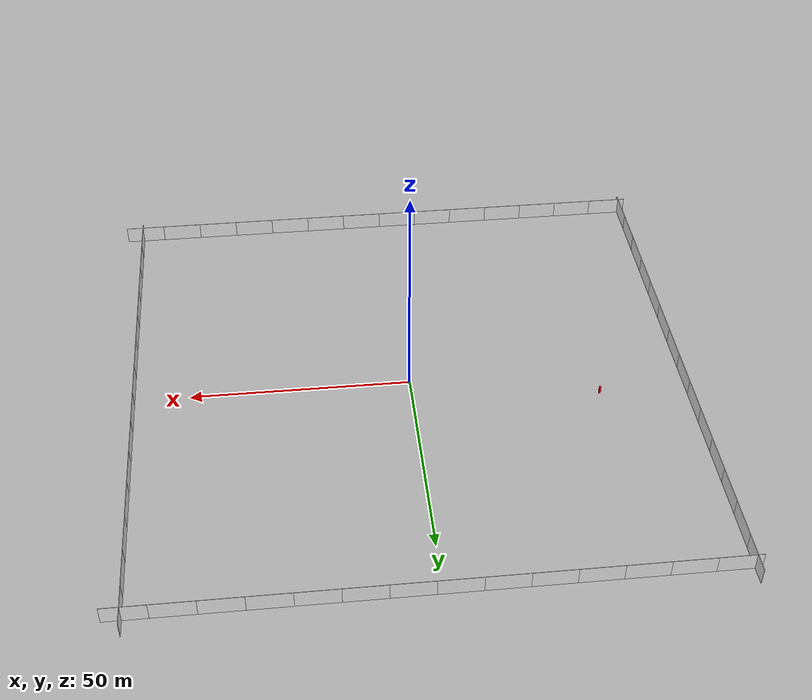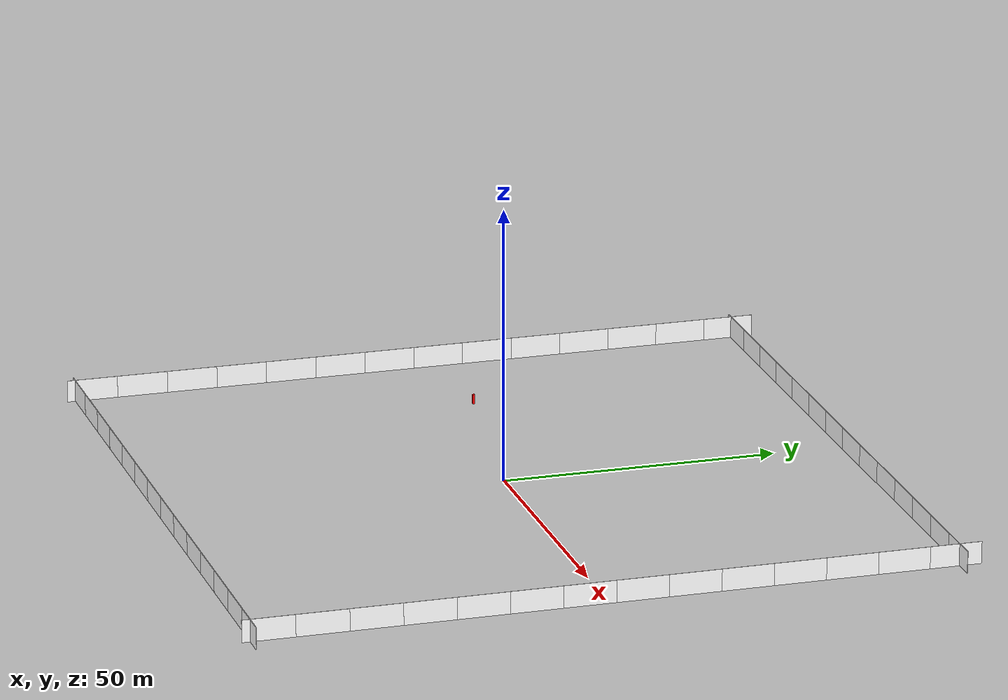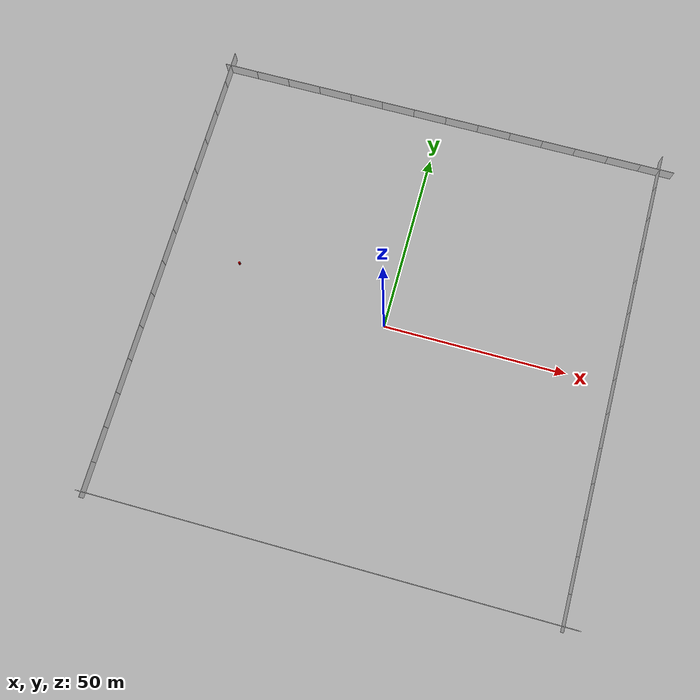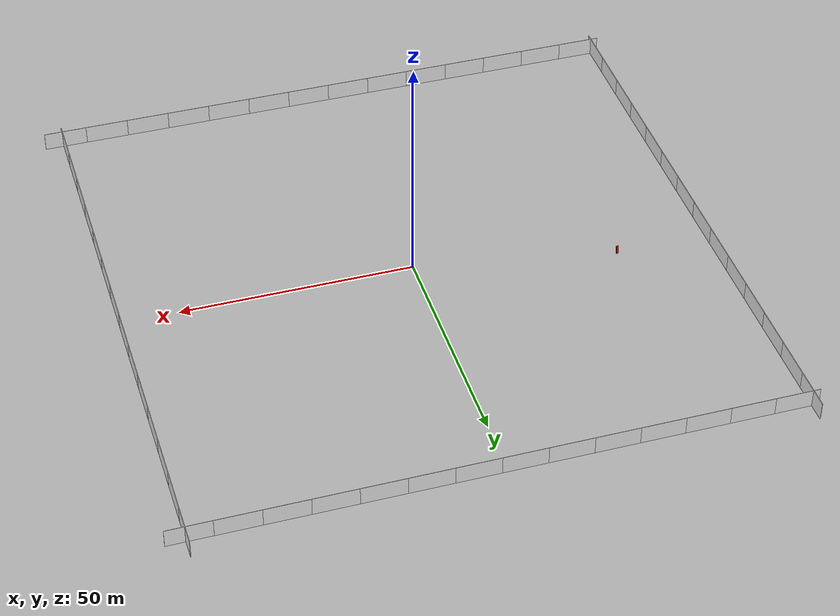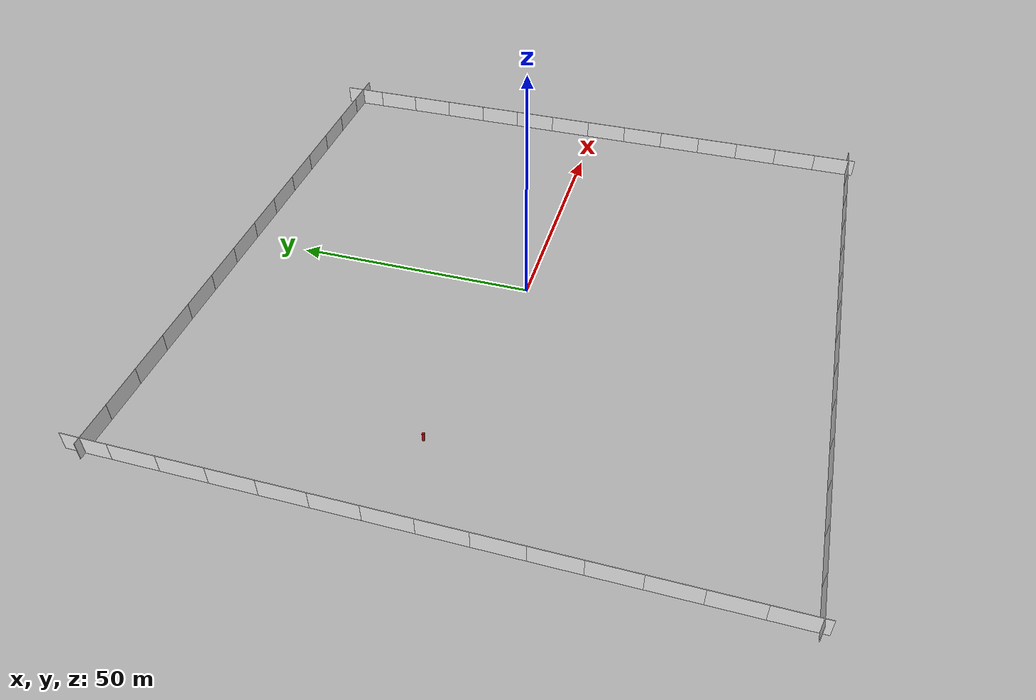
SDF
<sdf version="1.8">
 <world name="generated_world">
  <plugin name="ignition::gazebo::systems::Physics" filename="ignition-gazebo-physics-system"/>
  <plugin name="ignition::gazebo::systems::UserCommands" filename="ignition-gazebo-user-commands-system"/>
  <plugin name="ignition::gazebo::systems::SceneBroadcaster" filename="ignition-gazebo-scene-broadcaster-system"/>
  <plugin name="ignition::gazebo::systems::Contact" filename="ignition-gazebo-contact-system"/>
  <plugin name="ignition::gazebo::systems::Sensors" filename="libignition-gazebo-sensors-system.so"/>
  <light name="sun" type="directional">
   <cast_shadows>0</cast_shadows>
   <pose>0 0 100 0 0 0</pose>
   <diffuse>0.8 0.8 0.8 1</diffuse>
   <specular>0.8 0.8 0.8 1</specular>
   <direction>-0.5 0.1 -0.9</direction>
   <intensity>5</intensity>
  </light>
  <gravity>0 0 -9.81</gravity>
  <magnetic_field>6e-06 2.3e-05 -4.2e-05</magnetic_field>
  <atmosphere type="adiabatic"/>
  <physics name="default_physics" type="ignored">
   <max_step_size>0.01</max_step_size>
   <real_time_factor>1</real_time_factor>
   <real_time_update_rate>100</real_time_update_rate>
  </physics>
  <scene>
   <ambient>1 1 1 1</ambient>
   <background>0.6 0.8 1.0 1</background>
   <shadows>0</shadows>
   <grid>0</grid>
  </scene>
  <spherical_coordinates>
   <latitude_deg>0.0</latitude_deg>
   <longitude_deg>0.0</longitude_deg>
   <elevation>10.0</elevation>
   <heading_deg>0</heading_deg>
   <surface_model>EARTH_WGS84</surface_model>
  </spherical_coordinates>
  <model name="east_wall_1">
   <static>true</static>
   <pose>62.5 -50 2 0 0 0</pose>
   <link name="link">
    <collision name="collision"><geometry><box><size>1.0 9.32 4</size></box></geometry></collision>
    <visual name="visual">
     <geometry><box><size>0.1 9.32 4</size></box></geometry>
     <material>
      <diffuse>1.0 1.0 1.0 1</diffuse>
      <pbr>
       <metal><albedo_map>model://forest_wall/materials/textures/forest_wall_transparent.png</albedo_map></metal>
      </pbr>
     </material>
    </visual>
   </link>
  </model>
  <model name="east_wall_2">
   <static>true</static>
   <pose>62.5 -40.68 2 0 0 0</pose>
   <link name="link">
    <collision name="collision"><geometry><box><size>1.0 9.32 4</size></box></geometry></collision>
    <visual name="visual">
     <geometry><box><size>0.1 9.32 4</size></box></geometry>
     <material>
      <diffuse>1.0 1.0 1.0 1</diffuse>
      <pbr>
       <metal><albedo_map>model://forest_wall/materials/textures/forest_wall_transparent.png</albedo_map></metal>
      </pbr>
     </material>
    </visual>
   </link>
  </model>
  <model name="east_wall_3">
   <static>true</static>
   <pose>62.5 -31.36 2 0 0 0</pose>
   <link name="link">
    <collision name="collision"><geometry><box><size>1.0 9.32 4</size></box></geometry></collision>
    <visual name="visual">
     <geometry><box><size>0.1 9.32 4</size></box></geometry>
     <material>
      <diffuse>1.0 1.0 1.0 1</diffuse>
      <pbr>
       <metal><albedo_map>model://forest_wall/materials/textures/forest_wall_transparent.png</albedo_map></metal>
      </pbr>
     </material>
    </visual>
   </link>
  </model>
  <model name="east_wall_4">
   <static>true</static>
   <pose>62.5 -22.04 2 0 0 0</pose>
   <link name="link">
    <collision name="collision"><geometry><box><size>1.0 9.32 4</size></box></geometry></collision>
    <visual name="visual">
     <geometry><box><size>0.1 9.32 4</size></box></geometry>
     <material>
      <diffuse>1.0 1.0 1.0 1</diffuse>
      <pbr>
       <metal><albedo_map>model://forest_wall/materials/textures/forest_wall_transparent.png</albedo_map></metal>
      </pbr>
     </material>
    </visual>
   </link>
  </model>
  <model name="east_wall_5">
   <static>true</static>
   <pose>62.5 -12.72 2 0 0 0</pose>
   <link name="link">
    <collision name="collision"><geometry><box><size>1.0 9.32 4</size></box></geometry></collision>
    <visual name="visual">
     <geometry><box><size>0.1 9.32 4</size></box></geometry>
     <material>
      <diffuse>1.0 1.0 1.0 1</diffuse>
      <pbr>
       <metal><albedo_map>model://forest_wall/materials/textures/forest_wall_transparent.png</albedo_map></metal>
      </pbr>
     </material>
    </visual>
   </link>
  </model>
  <model name="east_wall_6">
   <static>true</static>
   <pose>62.5 -3.4 2 0 0 0</pose>
   <link name="link">
    <collision name="collision"><geometry><box><size>1.0 9.32 4</size></box></geometry></collision>
    <visual name="visual">
     <geometry><box><size>0.1 9.32 4</size></box></geometry>
     <material>
      <diffuse>1.0 1.0 1.0 1</diffuse>
      <pbr>
       <metal><albedo_map>model://forest_wall/materials/textures/forest_wall_transparent.png</albedo_map></metal>
      </pbr>
     </material>
    </visual>
   </link>
  </model>
  <model name="east_wall_7">
   <static>true</static>
   <pose>62.5 5.92 2 0 0 0</pose>
   <link name="link">
    <collision name="collision"><geometry><box><size>1.0 9.32 4</size></box></geometry></collision>
    <visual name="visual">
     <geometry><box><size>0.1 9.32 4</size></box></geometry>
     <material>
      <diffuse>1.0 1.0 1.0 1</diffuse>
      <pbr>
       <metal><albedo_map>model://forest_wall/materials/textures/forest_wall_transparent.png</albedo_map></metal>
      </pbr>
     </material>
    </visual>
   </link>
  </model>
  <model name="east_wall_8">
   <static>true</static>
   <pose>62.5 15.24 2 0 0 0</pose>
   <link name="link">
    <collision name="collision"><geometry><box><size>1.0 9.32 4</size></box></geometry></collision>
    <visual name="visual">
     <geometry><box><size>0.1 9.32 4</size></box></geometry>
     <material>
      <diffuse>1.0 1.0 1.0 1</diffuse>
      <pbr>
       <metal><albedo_map>model://forest_wall/materials/textures/forest_wall_transparent.png</albedo_map></metal>
      </pbr>
     </material>
    </visual>
   </link>
  </model>
  <model name="east_wall_9">
   <static>true</static>
   <pose>62.5 24.56 2 0 0 0</pose>
   <link name="link">
    <collision name="collision"><geometry><box><size>1.0 9.32 4</size></box></geometry></collision>
    <visual name="visual">
     <geometry><box><size>0.1 9.32 4</size></box></geometry>
     <material>
      <diffuse>1.0 1.0 1.0 1</diffuse>
      <pbr>
       <metal><albedo_map>model://forest_wall/materials/textures/forest_wall_transparent.png</albedo_map></metal>
      </pbr>
     </material>
    </visual>
   </link>
  </model>
  <model name="east_wall_10">
   <static>true</static>
   <pose>62.5 33.88 2 0 0 0</pose>
   <link name="link">
    <collision name="collision"><geometry><box><size>1.0 9.32 4</size></box></geometry></collision>
    <visual name="visual">
     <geometry><box><size>0.1 9.32 4</size></box></geometry>
     <material>
      <diffuse>1.0 1.0 1.0 1</diffuse>
      <pbr>
       <metal><albedo_map>model://forest_wall/materials/textures/forest_wall_transparent.png</albedo_map></metal>
      </pbr>
     </material>
    </visual>
   </link>
  </model>
  <model name="east_wall_11">
   <static>true</static>
   <pose>62.5 43.2 2 0 0 0</pose>
   <link name="link">
    <collision name="collision"><geometry><box><size>1.0 9.32 4</size></box></geometry></collision>
    <visual name="visual">
     <geometry><box><size>0.1 9.32 4</size></box></geometry>
     <material>
      <diffuse>1.0 1.0 1.0 1</diffuse>
      <pbr>
       <metal><albedo_map>model://forest_wall/materials/textures/forest_wall_transparent.png</albedo_map></metal>
      </pbr>
     </material>
    </visual>
   </link>
  </model>
  <model name="east_wall_12">
   <static>true</static>
   <pose>62.5 52.52 2 0 0 0</pose>
   <link name="link">
    <collision name="collision"><geometry><box><size>1.0 9.32 4</size></box></geometry></collision>
    <visual name="visual">
     <geometry><box><size>0.1 9.32 4</size></box></geometry>
     <material>
      <diffuse>1.0 1.0 1.0 1</diffuse>
      <pbr>
       <metal><albedo_map>model://forest_wall/materials/textures/forest_wall_transparent.png</albedo_map></metal>
      </pbr>
     </material>
    </visual>
   </link>
  </model>
  <model name="east_wall_13">
   <static>true</static>
   <pose>62.5 61.84 2 0 0 0</pose>
   <link name="link">
    <collision name="collision"><geometry><box><size>1.0 9.32 4</size></box></geometry></collision>
    <visual name="visual">
     <geometry><box><size>0.1 9.32 4</size></box></geometry>
     <material>
      <diffuse>1.0 1.0 1.0 1</diffuse>
      <pbr>
       <metal><albedo_map>model://forest_wall/materials/textures/forest_wall_transparent.png</albedo_map></metal>
      </pbr>
     </material>
    </visual>
   </link>
  </model>
  <model name="east_wall_14">
   <static>true</static>
   <pose>62.5 -59.32 2 0 0 0</pose>
   <link name="link">
    <collision name="collision"><geometry><box><size>1.0 9.32 4</size></box></geometry></collision>
    <visual name="visual">
     <geometry><box><size>0.1 9.32 4</size></box></geometry>
     <material>
      <diffuse>1.0 1.0 1.0 1</diffuse>
      <pbr>
       <metal><albedo_map>model://forest_wall/materials/textures/forest_wall_transparent.png</albedo_map></metal>
      </pbr>
     </material>
    </visual>
   </link>
  </model>
  <model name="west_wall_1">
   <static>true</static>
   <pose>-62.5 -50 2 0 0 0</pose>
   <link name="link">
    <collision name="collision"><geometry><box><size>1.0 9.32 4</size></box></geometry></collision>
    <visual name="visual">
     <geometry><box><size>0.1 9.32 4</size></box></geometry>
     <material>
      <diffuse>1.0 1.0 1.0 1</diffuse>
      <pbr>
       <metal><albedo_map>model://forest_wall/materials/textures/forest_wall_transparent.png</albedo_map></metal>
      </pbr>
     </material>
    </visual>
   </link>
  </model>
  <model name="west_wall_2">
   <static>true</static>
   <pose>-62.5 -40.68 2 0 0 0</pose>
   <link name="link">
    <collision name="collision"><geometry><box><size>1.0 9.32 4</size></box></geometry></collision>
    <visual name="visual">
     <geometry><box><size>0.1 9.32 4</size></box></geometry>
     <material>
      <diffuse>1.0 1.0 1.0 1</diffuse>
      <pbr>
       <metal><albedo_map>model://forest_wall/materials/textures/forest_wall_transparent.png</albedo_map></metal>
      </pbr>
     </material>
    </visual>
   </link>
  </model>
  <model name="west_wall_3">
   <static>true</static>
   <pose>-62.5 -31.36 2 0 0 0</pose>
   <link name="link">
    <collision name="collision"><geometry><box><size>1.0 9.32 4</size></box></geometry></collision>
    <visual name="visual">
     <geometry><box><size>0.1 9.32 4</size></box></geometry>
     <material>
      <diffuse>1.0 1.0 1.0 1</diffuse>
      <pbr>
       <metal><albedo_map>model://forest_wall/materials/textures/forest_wall_transparent.png</albedo_map></metal>
      </pbr>
     </material>
    </visual>
   </link>
  </model>
  <model name="west_wall_4">
   <static>true</static>
   <pose>-62.5 -22.04 2 0 0 0</pose>
   <link name="link">
    <collision name="collision"><geometry><box><size>1.0 9.32 4</size></box></geometry></collision>
    <visual name="visual">
     <geometry><box><size>0.1 9.32 4</size></box></geometry>
     <material>
      <diffuse>1.0 1.0 1.0 1</diffuse>
      <pbr>
       <metal><albedo_map>model://forest_wall/materials/textures/forest_wall_transparent.png</albedo_map></metal>
      </pbr>
     </material>
    </visual>
   </link>
  </model>
  <model name="west_wall_5">
   <static>true</static>
   <pose>-62.5 -12.72 2 0 0 0</pose>
   <link name="link">
    <collision name="collision"><geometry><box><size>1.0 9.32 4</size></box></geometry></collision>
    <visual name="visual">
     <geometry><box><size>0.1 9.32 4</size></box></geometry>
     <material>
      <diffuse>1.0 1.0 1.0 1</diffuse>
      <pbr>
       <metal><albedo_map>model://forest_wall/materials/textures/forest_wall_transparent.png</albedo_map></metal>
      </pbr>
     </material>
    </visual>
   </link>
  </model>
  <model name="west_wall_6">
   <static>true</static>
   <pose>-62.5 -3.4 2 0 0 0</pose>
   <link name="link">
    <collision name="collision"><geometry><box><size>1.0 9.32 4</size></box></geometry></collision>
    <visual name="visual">
     <geometry><box><size>0.1 9.32 4</size></box></geometry>
     <material>
      <diffuse>1.0 1.0 1.0 1</diffuse>
      <pbr>
       <metal><albedo_map>model://forest_wall/materials/textures/forest_wall_transparent.png</albedo_map></metal>
      </pbr>
     </material>
    </visual>
   </link>
  </model>
  <model name="west_wall_7">
   <static>true</static>
   <pose>-62.5 5.92 2 0 0 0</pose>
   <link name="link">
    <collision name="collision"><geometry><box><size>1.0 9.32 4</size></box></geometry></collision>
    <visual name="visual">
     <geometry><box><size>0.1 9.32 4</size></box></geometry>
     <material>
      <diffuse>1.0 1.0 1.0 1</diffuse>
      <pbr>
       <metal><albedo_map>model://forest_wall/materials/textures/forest_wall_transparent.png</albedo_map></metal>
      </pbr>
     </material>
    </visual>
   </link>
  </model>
  <model name="west_wall_8">
   <static>true</static>
   <pose>-62.5 15.24 2 0 0 0</pose>
   <link name="link">
    <collision name="collision"><geometry><box><size>1.0 9.32 4</size></box></geometry></collision>
    <visual name="visual">
     <geometry><box><size>0.1 9.32 4</size></box></geometry>
     <material>
      <diffuse>1.0 1.0 1.0 1</diffuse>
      <pbr>
       <metal><albedo_map>model://forest_wall/materials/textures/forest_wall_transparent.png</albedo_map></metal>
      </pbr>
     </material>
    </visual>
   </link>
  </model>
  <model name="west_wall_9">
   <static>true</static>
   <pose>-62.5 24.56 2 0 0 0</pose>
   <link name="link">
    <collision name="collision"><geometry><box><size>1.0 9.32 4</size></box></geometry></collision>
    <visual name="visual">
     <geometry><box><size>0.1 9.32 4</size></box></geometry>
     <material>
      <diffuse>1.0 1.0 1.0 1</diffuse>
      <pbr>
       <metal><albedo_map>model://forest_wall/materials/textures/forest_wall_transparent.png</albedo_map></metal>
      </pbr>
     </material>
    </visual>
   </link>
  </model>
  <model name="west_wall_10">
   <static>true</static>
   <pose>-62.5 33.88 2 0 0 0</pose>
   <link name="link">
    <collision name="collision"><geometry><box><size>1.0 9.32 4</size></box></geometry></collision>
    <visual name="visual">
     <geometry><box><size>0.1 9.32 4</size></box></geometry>
     <material>
      <diffuse>1.0 1.0 1.0 1</diffuse>
      <pbr>
       <metal><albedo_map>model://forest_wall/materials/textures/forest_wall_transparent.png</albedo_map></metal>
      </pbr>
     </material>
    </visual>
   </link>
  </model>
  <model name="west_wall_11">
   <static>true</static>
   <pose>-62.5 43.2 2 0 0 0</pose>
   <link name="link">
    <collision name="collision"><geometry><box><size>1.0 9.32 4</size></box></geometry></collision>
    <visual name="visual">
     <geometry><box><size>0.1 9.32 4</size></box></geometry>
     <material>
      <diffuse>1.0 1.0 1.0 1</diffuse>
      <pbr>
       <metal><albedo_map>model://forest_wall/materials/textures/forest_wall_transparent.png</albedo_map></metal>
      </pbr>
     </material>
    </visual>
   </link>
  </model>
  <model name="west_wall_12">
   <static>true</static>
   <pose>-62.5 52.52 2 0 0 0</pose>
   <link name="link">
    <collision name="collision"><geometry><box><size>1.0 9.32 4</size></box></geometry></collision>
    <visual name="visual">
     <geometry><box><size>0.1 9.32 4</size></box></geometry>
     <material>
      <diffuse>1.0 1.0 1.0 1</diffuse>
      <pbr>
       <metal><albedo_map>model://forest_wall/materials/textures/forest_wall_transparent.png</albedo_map></metal>
      </pbr>
     </material>
    </visual>
   </link>
  </model>
  <model name="west_wall_13">
   <static>true</static>
   <pose>-62.5 61.84 2 0 0 0</pose>
   <link name="link">
    <collision name="collision"><geometry><box><size>1.0 9.32 4</size></box></geometry></collision>
    <visual name="visual">
     <geometry><box><size>0.1 9.32 4</size></box></geometry>
     <material>
      <diffuse>1.0 1.0 1.0 1</diffuse>
      <pbr>
       <metal><albedo_map>model://forest_wall/materials/textures/forest_wall_transparent.png</albedo_map></metal>
      </pbr>
     </material>
    </visual>
   </link>
  </model>
  <model name="west_wall_14">
   <static>true</static>
   <pose>-62.5 -59.32 2 0 0 0</pose>
   <link name="link">
    <collision name="collision"><geometry><box><size>1.0 9.32 4</size></box></geometry></collision>
    <visual name="visual">
     <geometry><box><size>0.1 9.32 4</size></box></geometry>
     <material>
      <diffuse>1.0 1.0 1.0 1</diffuse>
      <pbr>
       <metal><albedo_map>model://forest_wall/materials/textures/forest_wall_transparent.png</albedo_map></metal>
      </pbr>
     </material>
    </visual>
   </link>
  </model>
  <model name="north_wall_1">
   <static>true</static>
   <pose>-50 62.5 2 0 0 0</pose>
   <link name="link">
    <collision name="collision"><geometry><box><size>9.32 1.0 4</size></box></geometry></collision>
    <visual name="visual">
     <geometry><box><size>9.32 0.1 4</size></box></geometry>
     <material>
      <diffuse>1.0 1.0 1.0 1</diffuse>
      <pbr>
       <metal><albedo_map>model://forest_wall/materials/textures/forest_wall_transparent.png</albedo_map></metal>
      </pbr>
     </material>
    </visual>
   </link>
  </model>
  <model name="north_wall_2">
   <static>true</static>
   <pose>-40.68 62.5 2 0 0 0</pose>
   <link name="link">
    <collision name="collision"><geometry><box><size>9.32 1.0 4</size></box></geometry></collision>
    <visual name="visual">
     <geometry><box><size>9.32 0.1 4</size></box></geometry>
     <material>
      <diffuse>1.0 1.0 1.0 1</diffuse>
      <pbr>
       <metal><albedo_map>model://forest_wall/materials/textures/forest_wall_transparent.png</albedo_map></metal>
      </pbr>
     </material>
    </visual>
   </link>
  </model>
  <model name="north_wall_3">
   <static>true</static>
   <pose>-31.36 62.5 2 0 0 0</pose>
   <link name="link">
    <collision name="collision"><geometry><box><size>9.32 1.0 4</size></box></geometry></collision>
    <visual name="visual">
     <geometry><box><size>9.32 0.1 4</size></box></geometry>
     <material>
      <diffuse>1.0 1.0 1.0 1</diffuse>
      <pbr>
       <metal><albedo_map>model://forest_wall/materials/textures/forest_wall_transparent.png</albedo_map></metal>
      </pbr>
     </material>
    </visual>
   </link>
  </model>
  <model name="north_wall_4">
   <static>true</static>
   <pose>-22.04 62.5 2 0 0 0</pose>
   <link name="link">
    <collision name="collision"><geometry><box><size>9.32 1.0 4</size></box></geometry></collision>
    <visual name="visual">
     <geometry><box><size>9.32 0.1 4</size></box></geometry>
     <material>
      <diffuse>1.0 1.0 1.0 1</diffuse>
      <pbr>
       <metal><albedo_map>model://forest_wall/materials/textures/forest_wall_transparent.png</albedo_map></metal>
      </pbr>
     </material>
    </visual>
   </link>
  </model>
  <model name="north_wall_5">
   <static>true</static>
   <pose>-12.72 62.5 2 0 0 0</pose>
   <link name="link">
    <collision name="collision"><geometry><box><size>9.32 1.0 4</size></box></geometry></collision>
    <visual name="visual">
     <geometry><box><size>9.32 0.1 4</size></box></geometry>
     <material>
      <diffuse>1.0 1.0 1.0 1</diffuse>
      <pbr>
       <metal><albedo_map>model://forest_wall/materials/textures/forest_wall_transparent.png</albedo_map></metal>
      </pbr>
     </material>
    </visual>
   </link>
  </model>
  <model name="north_wall_6">
   <static>true</static>
   <pose>-3.4 62.5 2 0 0 0</pose>
   <link name="link">
    <collision name="collision"><geometry><box><size>9.32 1.0 4</size></box></geometry></collision>
    <visual name="visual">
     <geometry><box><size>9.32 0.1 4</size></box></geometry>
     <material>
      <diffuse>1.0 1.0 1.0 1</diffuse>
      <pbr>
       <metal><albedo_map>model://forest_wall/materials/textures/forest_wall_transparent.png</albedo_map></metal>
      </pbr>
     </material>
    </visual>
   </link>
  </model>
  <model name="north_wall_7">
   <static>true</static>
   <pose>5.92 62.5 2 0 0 0</pose>
   <link name="link">
    <collision name="collision"><geometry><box><size>9.32 1.0 4</size></box></geometry></collision>
    <visual name="visual">
     <geometry><box><size>9.32 0.1 4</size></box></geometry>
     <material>
      <diffuse>1.0 1.0 1.0 1</diffuse>
      <pbr>
       <metal><albedo_map>model://forest_wall/materials/textures/forest_wall_transparent.png</albedo_map></metal>
      </pbr>
     </material>
    </visual>
   </link>
  </model>
  <model name="north_wall_8">
   <static>true</static>
   <pose>15.24 62.5 2 0 0 0</pose>
   <link name="link">
    <collision name="collision"><geometry><box><size>9.32 1.0 4</size></box></geometry></collision>
    <visual name="visual">
     <geometry><box><size>9.32 0.1 4</size></box></geometry>
     <material>
      <diffuse>1.0 1.0 1.0 1</diffuse>
      <pbr>
       <metal><albedo_map>model://forest_wall/materials/textures/forest_wall_transparent.png</albedo_map></metal>
      </pbr>
     </material>
    </visual>
   </link>
  </model>
  <model name="north_wall_9">
   <static>true</static>
   <pose>24.56 62.5 2 0 0 0</pose>
   <link name="link">
    <collision name="collision"><geometry><box><size>9.32 1.0 4</size></box></geometry></collision>
    <visual name="visual">
     <geometry><box><size>9.32 0.1 4</size></box></geometry>
     <material>
      <diffuse>1.0 1.0 1.0 1</diffuse>
      <pbr>
       <metal><albedo_map>model://forest_wall/materials/textures/forest_wall_transparent.png</albedo_map></metal>
      </pbr>
     </material>
    </visual>
   </link>
  </model>
  <model name="north_wall_10">
   <static>true</static>
   <pose>33.88 62.5 2 0 0 0</pose>
   <link name="link">
    <collision name="collision"><geometry><box><size>9.32 1.0 4</size></box></geometry></collision>
    <visual name="visual">
     <geometry><box><size>9.32 0.1 4</size></box></geometry>
     <material>
      <diffuse>1.0 1.0 1.0 1</diffuse>
      <pbr>
       <metal><albedo_map>model://forest_wall/materials/textures/forest_wall_transparent.png</albedo_map></metal>
      </pbr>
     </material>
    </visual>
   </link>
  </model>
  <model name="north_wall_11">
   <static>true</static>
   <pose>43.2 62.5 2 0 0 0</pose>
   <link name="link">
    <collision name="collision"><geometry><box><size>9.32 1.0 4</size></box></geometry></collision>
    <visual name="visual">
     <geometry><box><size>9.32 0.1 4</size></box></geometry>
     <material>
      <diffuse>1.0 1.0 1.0 1</diffuse>
      <pbr>
       <metal><albedo_map>model://forest_wall/materials/textures/forest_wall_transparent.png</albedo_map></metal>
      </pbr>
     </material>
    </visual>
   </link>
  </model>
  <model name="north_wall_12">
   <static>true</static>
   <pose>52.52 62.5 2 0 0 0</pose>
   <link name="link">
    <collision name="collision"><geometry><box><size>9.32 1.0 4</size></box></geometry></collision>
    <visual name="visual">
     <geometry><box><size>9.32 0.1 4</size></box></geometry>
     <material>
      <diffuse>1.0 1.0 1.0 1</diffuse>
      <pbr>
       <metal><albedo_map>model://forest_wall/materials/textures/forest_wall_transparent.png</albedo_map></metal>
      </pbr>
     </material>
    </visual>
   </link>
  </model>
  <model name="north_wall_13">
   <static>true</static>
   <pose>61.84 62.5 2 0 0 0</pose>
   <link name="link">
    <collision name="collision"><geometry><box><size>9.32 1.0 4</size></box></geometry></collision>
    <visual name="visual">
     <geometry><box><size>9.32 0.1 4</size></box></geometry>
     <material>
      <diffuse>1.0 1.0 1.0 1</diffuse>
      <pbr>
       <metal><albedo_map>model://forest_wall/materials/textures/forest_wall_transparent.png</albedo_map></metal>
      </pbr>
     </material>
    </visual>
   </link>
  </model>
  <model name="north_wall_14">
   <static>true</static>
   <pose>-59.32 62.5 2 0 0 0</pose>
   <link name="link">
    <collision name="collision"><geometry><box><size>9.32 1.0 4</size></box></geometry></collision>
    <visual name="visual">
     <geometry><box><size>9.32 0.1 4</size></box></geometry>
     <material>
      <diffuse>1.0 1.0 1.0 1</diffuse>
      <pbr>
       <metal><albedo_map>model://forest_wall/materials/textures/forest_wall_transparent.png</albedo_map></metal>
      </pbr>
     </material>
    </visual>
   </link>
  </model>
  <model name="south_wall_1">
   <static>true</static>
   <pose>-50 -62.5 2 0 0 0</pose>
   <link name="link">
    <collision name="collision"><geometry><box><size>9.32 1.0 4</size></box></geometry></collision>
    <visual name="visual">
     <geometry><box><size>9.32 0.1 4</size></box></geometry>
     <material>
      <diffuse>1.0 1.0 1.0 1</diffuse>
      <pbr>
       <metal><albedo_map>model://forest_wall/materials/textures/forest_wall_transparent.png</albedo_map></metal>
      </pbr>
     </material>
    </visual>
   </link>
  </model>
  <model name="south_wall_2">
   <static>true</static>
   <pose>-40.68 -62.5 2 0 0 0</pose>
   <link name="link">
    <collision name="collision"><geometry><box><size>9.32 1.0 4</size></box></geometry></collision>
    <visual name="visual">
     <geometry><box><size>9.32 0.1 4</size></box></geometry>
     <material>
      <diffuse>1.0 1.0 1.0 1</diffuse>
      <pbr>
       <metal><albedo_map>model://forest_wall/materials/textures/forest_wall_transparent.png</albedo_map></metal>
      </pbr>
     </material>
    </visual>
   </link>
  </model>
  <model name="south_wall_3">
   <static>true</static>
   <pose>-31.36 -62.5 2 0 0 0</pose>
   <link name="link">
    <collision name="collision"><geometry><box><size>9.32 1.0 4</size></box></geometry></collision>
    <visual name="visual">
     <geometry><box><size>9.32 0.1 4</size></box></geometry>
     <material>
      <diffuse>1.0 1.0 1.0 1</diffuse>
      <pbr>
       <metal><albedo_map>model://forest_wall/materials/textures/forest_wall_transparent.png</albedo_map></metal>
      </pbr>
     </material>
    </visual>
   </link>
  </model>
  <model name="south_wall_4">
   <static>true</static>
   <pose>-22.04 -62.5 2 0 0 0</pose>
   <link name="link">
    <collision name="collision"><geometry><box><size>9.32 1.0 4</size></box></geometry></collision>
    <visual name="visual">
     <geometry><box><size>9.32 0.1 4</size></box></geometry>
     <material>
      <diffuse>1.0 1.0 1.0 1</diffuse>
      <pbr>
       <metal><albedo_map>model://forest_wall/materials/textures/forest_wall_transparent.png</albedo_map></metal>
      </pbr>
     </material>
    </visual>
   </link>
  </model>
  <model name="south_wall_5">
   <static>true</static>
   <pose>-12.72 -62.5 2 0 0 0</pose>
   <link name="link">
    <collision name="collision"><geometry><box><size>9.32 1.0 4</size></box></geometry></collision>
    <visual name="visual">
     <geometry><box><size>9.32 0.1 4</size></box></geometry>
     <material>
      <diffuse>1.0 1.0 1.0 1</diffuse>
      <pbr>
       <metal><albedo_map>model://forest_wall/materials/textures/forest_wall_transparent.png</albedo_map></metal>
      </pbr>
     </material>
    </visual>
   </link>
  </model>
  <model name="south_wall_6">
   <static>true</static>
   <pose>-3.4 -62.5 2 0 0 0</pose>
   <link name="link">
    <collision name="collision"><geometry><box><size>9.32 1.0 4</size></box></geometry></collision>
    <visual name="visual">
     <geometry><box><size>9.32 0.1 4</size></box></geometry>
     <material>
      <diffuse>1.0 1.0 1.0 1</diffuse>
      <pbr>
       <metal><albedo_map>model://forest_wall/materials/textures/forest_wall_transparent.png</albedo_map></metal>
      </pbr>
     </material>
    </visual>
   </link>
  </model>
  <model name="south_wall_7">
   <static>true</static>
   <pose>5.92 -62.5 2 0 0 0</pose>
   <link name="link">
    <collision name="collision"><geometry><box><size>9.32 1.0 4</size></box></geometry></collision>
    <visual name="visual">
     <geometry><box><size>9.32 0.1 4</size></box></geometry>
     <material>
      <diffuse>1.0 1.0 1.0 1</diffuse>
      <pbr>
       <metal><albedo_map>model://forest_wall/materials/textures/forest_wall_transparent.png</albedo_map></metal>
      </pbr>
     </material>
    </visual>
   </link>
  </model>
  <model name="south_wall_8">
   <static>true</static>
   <pose>15.24 -62.5 2 0 0 0</pose>
   <link name="link">
    <collision name="collision"><geometry><box><size>9.32 1.0 4</size></box></geometry></collision>
    <visual name="visual">
     <geometry><box><size>9.32 0.1 4</size></box></geometry>
     <material>
      <diffuse>1.0 1.0 1.0 1</diffuse>
      <pbr>
       <metal><albedo_map>model://forest_wall/materials/textures/forest_wall_transparent.png</albedo_map></metal>
      </pbr>
     </material>
    </visual>
   </link>
  </model>
  <model name="south_wall_9">
   <static>true</static>
   <pose>24.56 -62.5 2 0 0 0</pose>
   <link name="link">
    <collision name="collision"><geometry><box><size>9.32 1.0 4</size></box></geometry></collision>
    <visual name="visual">
     <geometry><box><size>9.32 0.1 4</size></box></geometry>
     <material>
      <diffuse>1.0 1.0 1.0 1</diffuse>
      <pbr>
       <metal><albedo_map>model://forest_wall/materials/textures/forest_wall_transparent.png</albedo_map></metal>
      </pbr>
     </material>
    </visual>
   </link>
  </model>
  <model name="south_wall_10">
   <static>true</static>
   <pose>33.88 -62.5 2 0 0 0</pose>
   <link name="link">
    <collision name="collision"><geometry><box><size>9.32 1.0 4</size></box></geometry></collision>
    <visual name="visual">
     <geometry><box><size>9.32 0.1 4</size></box></geometry>
     <material>
      <diffuse>1.0 1.0 1.0 1</diffuse>
      <pbr>
       <metal><albedo_map>model://forest_wall/materials/textures/forest_wall_transparent.png</albedo_map></metal>
      </pbr>
     </material>
    </visual>
   </link>
  </model>
  <model name="south_wall_11">
   <static>true</static>
   <pose>43.2 -62.5 2 0 0 0</pose>
   <link name="link">
    <collision name="collision"><geometry><box><size>9.32 1.0 4</size></box></geometry></collision>
    <visual name="visual">
     <geometry><box><size>9.32 0.1 4</size></box></geometry>
     <material>
      <diffuse>1.0 1.0 1.0 1</diffuse>
      <pbr>
       <metal><albedo_map>model://forest_wall/materials/textures/forest_wall_transparent.png</albedo_map></metal>
      </pbr>
     </material>
    </visual>
   </link>
  </model>
  <model name="south_wall_12">
   <static>true</static>
   <pose>52.52 -62.5 2 0 0 0</pose>
   <link name="link">
    <collision name="collision"><geometry><box><size>9.32 1.0 4</size></box></geometry></collision>
    <visual name="visual">
     <geometry><box><size>9.32 0.1 4</size></box></geometry>
     <material>
      <diffuse>1.0 1.0 1.0 1</diffuse>
      <pbr>
       <metal><albedo_map>model://forest_wall/materials/textures/forest_wall_transparent.png</albedo_map></metal>
      </pbr>
     </material>
    </visual>
   </link>
  </model>
  <model name="south_wall_13">
   <static>true</static>
   <pose>61.84 -62.5 2 0 0 0</pose>
   <link name="link">
    <collision name="collision"><geometry><box><size>9.32 1.0 4</size></box></geometry></collision>
    <visual name="visual">
     <geometry><box><size>9.32 0.1 4</size></box></geometry>
     <material>
      <diffuse>1.0 1.0 1.0 1</diffuse>
      <pbr>
       <metal><albedo_map>model://forest_wall/materials/textures/forest_wall_transparent.png</albedo_map></metal>
      </pbr>
     </material>
    </visual>
   </link>
  </model>
  <model name="south_wall_14">
   <static>true</static>
   <pose>-59.32 -62.5 2 0 0 0</pose>
   <link name="link">
    <collision name="collision"><geometry><box><size>9.32 1.0 4</size></box></geometry></collision>
    <visual name="visual">
     <geometry><box><size>9.32 0.1 4</size></box></geometry>
     <material>
      <diffuse>1.0 1.0 1.0 1</diffuse>
      <pbr>
       <metal><albedo_map>model://forest_wall/materials/textures/forest_wall_transparent.png</albedo_map></metal>
      </pbr>
     </material>
    </visual>
   </link>
  </model>
  <model name="corner_wall_ne">
   <static>true</static>
   <pose>62.5 62.5 2 0 0 0</pose>
   <link name="link">
    <collision name="collision"><geometry><box><size>1.0 1.0 4</size></box></geometry></collision>
    <visual name="visual">
     <geometry><box><size>0.1 0.1 4</size></box></geometry>
     <material>
      <diffuse>1.0 1.0 1.0 1</diffuse>
      <pbr>
       <metal><albedo_map>model://forest_wall/materials/textures/forest_wall_transparent.png</albedo_map></metal>
      </pbr>
     </material>
    </visual>
   </link>
  </model>
  <model name="corner_wall_nw">
   <static>true</static>
   <pose>-62.5 62.5 2 0 0 0</pose>
   <link name="link">
    <collision name="collision"><geometry><box><size>1.0 1.0 4</size></box></geometry></collision>
    <visual name="visual">
     <geometry><box><size>0.1 0.1 4</size></box></geometry>
     <material>
      <diffuse>1.0 1.0 1.0 1</diffuse>
      <pbr>
       <metal><albedo_map>model://forest_wall/materials/textures/forest_wall_transparent.png</albedo_map></metal>
      </pbr>
     </material>
    </visual>
   </link>
  </model>
  <model name="corner_wall_se">
   <static>true</static>
   <pose>62.5 -62.5 2 0 0 0</pose>
   <link name="link">
    <collision name="collision"><geometry><box><size>1.0 1.0 4</size></box></geometry></collision>
    <visual name="visual">
     <geometry><box><size>0.1 0.1 4</size></box></geometry>
     <material>
      <diffuse>1.0 1.0 1.0 1</diffuse>
      <pbr>
       <metal><albedo_map>model://forest_wall/materials/textures/forest_wall_transparent.png</albedo_map></metal>
      </pbr>
     </material>
    </visual>
   </link>
  </model>
  <model name="corner_wall_sw">
   <static>true</static>
   <pose>-62.5 -62.5 2 0 0 0</pose>
   <link name="link">
    <collision name="collision"><geometry><box><size>1.0 1.0 4</size></box></geometry></collision>
    <visual name="visual">
     <geometry><box><size>0.1 0.1 4</size></box></geometry>
     <material>
      <diffuse>1.0 1.0 1.0 1</diffuse>
      <pbr>
       <metal><albedo_map>model://forest_wall/materials/textures/forest_wall_transparent.png</albedo_map></metal>
      </pbr>
     </material>
    </visual>
   </link>
  </model>
  <model name="red_box">
   <pose>-43 7 0 0 0 0</pose>
   <static>true</static>
   <link name="link">
    <visual name="visual">
     <geometry><box><size>0.4 0.4 1.8</size></box></geometry>
     <material><ambient>1 0 0 1</ambient><diffuse>1 0 0 1</diffuse><specular>0.5 0.5 0.5 1</specular></material>
    </visual>
   </link>
  </model>
 </world>
</sdf>
